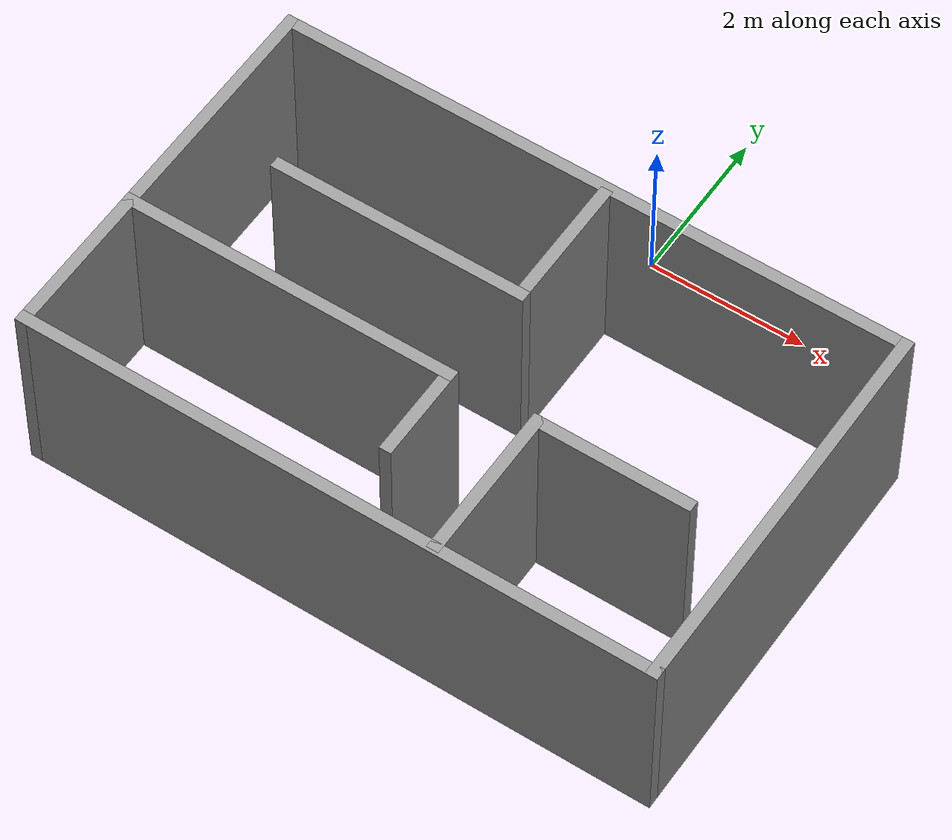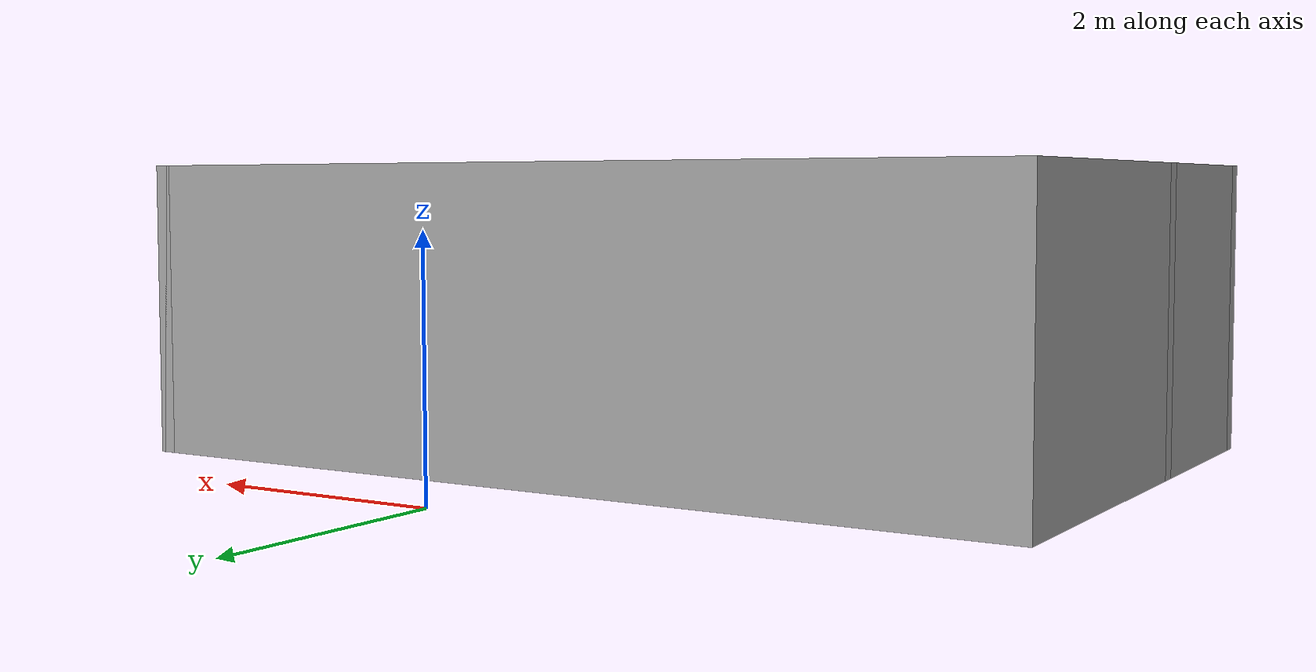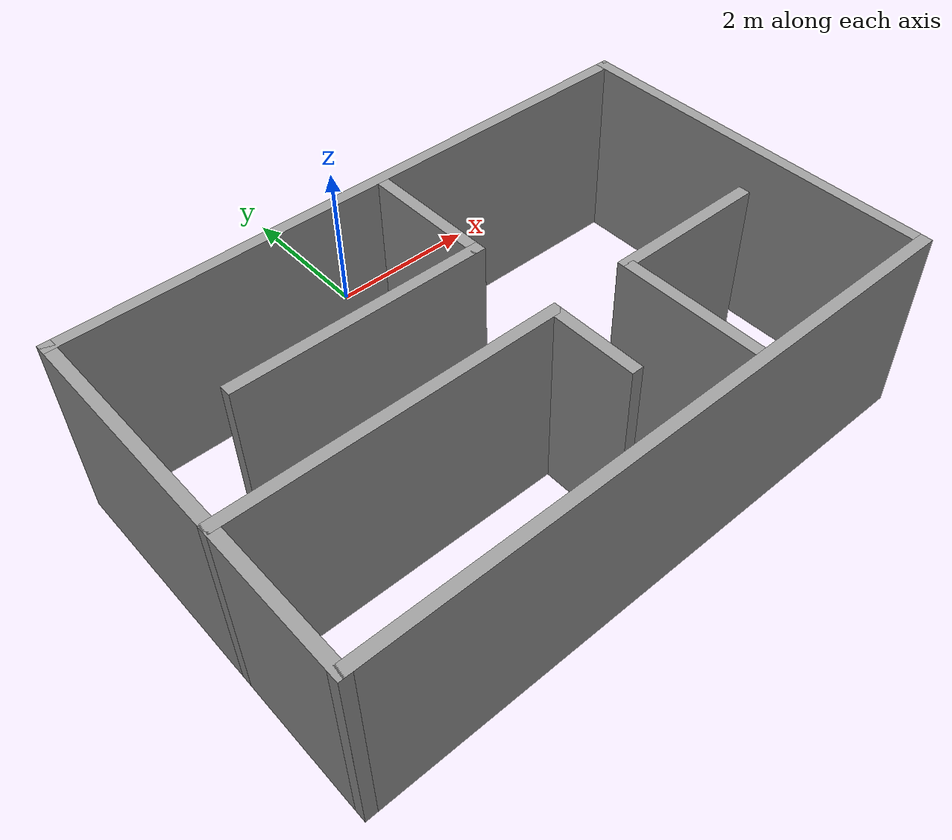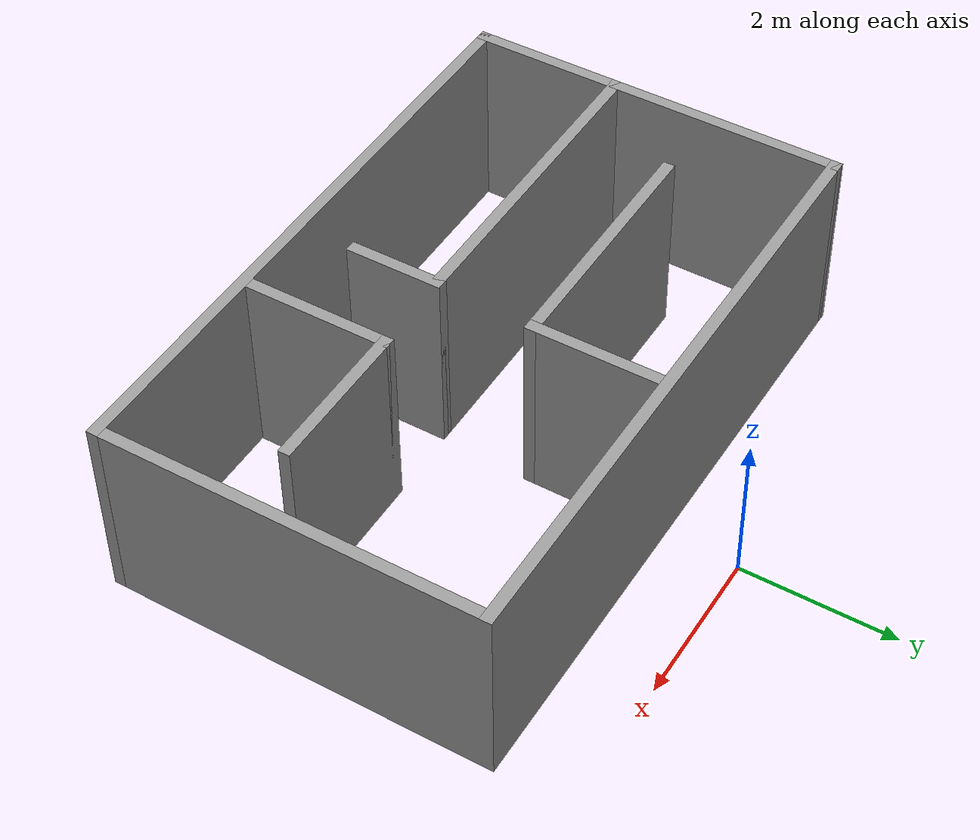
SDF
<?xml version='1.0'?>
<sdf version='1.7'>
  <model name='room人'>
    <pose>-0.215 -2.9725 0 0 -0 0</pose>
    <link name='Wall_0'>
      <collision name='Wall_0_Collision'>
        <geometry>
          <box>
            <size>8 0.15 2.5</size>
          </box>
        </geometry>
        <pose>0 0 1.25 0 -0 0</pose>
      </collision>
      <visual name='Wall_0_Visual'>
        <pose>0 0 1.25 0 -0 0</pose>
        <geometry>
          <box>
            <size>8 0.15 2.5</size>
          </box>
        </geometry>
        <material>
          <script>
            <uri>file://media/materials/scripts/gazebo.material</uri>
            <name>Gazebo/Grey</name>
          </script>
          <ambient>1 1 1 1</ambient>
        </material>
        <meta>
          <layer>0</layer>
        </meta>
      </visual>
      <pose>-0 1.9525 0 0 -0 0</pose>
    </link>
    <link name='Wall_1'>
      <collision name='Wall_1_Collision'>
        <geometry>
          <box>
            <size>5 0.15 2.5</size>
          </box>
        </geometry>
        <pose>0 0 1.25 0 -0 0</pose>
      </collision>
      <visual name='Wall_1_Visual'>
        <pose>0 0 1.25 0 -0 0</pose>
        <geometry>
          <box>
            <size>5 0.15 2.5</size>
          </box>
        </geometry>
        <material>
          <script>
            <uri>file://media/materials/scripts/gazebo.material</uri>
            <name>Gazebo/Grey</name>
          </script>
          <ambient>1 1 1 1</ambient>
        </material>
        <meta>
          <layer>0</layer>
        </meta>
      </visual>
      <pose>3.925 -0.4725 0 0 -0 -1.5708</pose>
    </link>
    <link name='Wall_11'>
      <collision name='Wall_11_Collision'>
        <geometry>
          <box>
            <size>2 0.15 2.5</size>
          </box>
        </geometry>
        <pose>0 0 1.25 0 -0 0</pose>
      </collision>
      <visual name='Wall_11_Visual'>
        <pose>0 0 1.25 0 -0 0</pose>
        <geometry>
          <box>
            <size>2 0.15 2.5</size>
          </box>
        </geometry>
        <material>
          <script>
            <uri>file://media/materials/scripts/gazebo.material</uri>
            <name>Gazebo/Grey</name>
          </script>
          <ambient>1 1 1 1</ambient>
        </material>
        <meta>
          <layer>0</layer>
        </meta>
      </visual>
      <pose>1.265 -1.9325 0 0 -0 1.5708</pose>
    </link>
    <link name='Wall_12'>
      <collision name='Wall_12_Collision'>
        <geometry>
          <box>
            <size>2 0.15 2.5</size>
          </box>
        </geometry>
        <pose>0 0 1.25 0 -0 0</pose>
      </collision>
      <visual name='Wall_12_Visual'>
        <pose>0 0 1.25 0 -0 0</pose>
        <geometry>
          <box>
            <size>2 0.15 2.5</size>
          </box>
        </geometry>
        <material>
          <script>
            <uri>file://media/materials/scripts/gazebo.material</uri>
            <name>Gazebo/Grey</name>
          </script>
          <ambient>1 1 1 1</ambient>
        </material>
        <meta>
          <layer>0</layer>
        </meta>
      </visual>
      <pose>2.19 -1.0075 0 0 -0 0</pose>
    </link>
    <link name='Wall_2'>
      <collision name='Wall_2_Collision'>
        <geometry>
          <box>
            <size>8 0.15 2.5</size>
          </box>
        </geometry>
        <pose>0 0 1.25 0 -0 0</pose>
      </collision>
      <visual name='Wall_2_Visual'>
        <pose>0 0 1.25 0 -0 0</pose>
        <geometry>
          <box>
            <size>8 0.15 2.5</size>
          </box>
        </geometry>
        <material>
          <script>
            <uri>file://media/materials/scripts/gazebo.material</uri>
            <name>Gazebo/Grey</name>
          </script>
          <ambient>1 1 1 1</ambient>
        </material>
        <meta>
          <layer>0</layer>
        </meta>
      </visual>
      <pose>-0 -2.8975 0 0 -0 3.14159</pose>
    </link>
    <link name='Wall_3'>
      <collision name='Wall_3_Collision'>
        <geometry>
          <box>
            <size>5 0.15 2.5</size>
          </box>
        </geometry>
        <pose>0 0 1.25 0 -0 0</pose>
      </collision>
      <visual name='Wall_3_Visual'>
        <pose>0 0 1.25 0 -0 0</pose>
        <geometry>
          <box>
            <size>5 0.15 2.5</size>
          </box>
        </geometry>
        <material>
          <script>
            <uri>file://media/materials/scripts/gazebo.material</uri>
            <name>Gazebo/Grey</name>
          </script>
          <ambient>1 1 1 1</ambient>
        </material>
        <meta>
          <layer>0</layer>
        </meta>
      </visual>
      <pose>-3.925 -0.4725 0 0 -0 1.5708</pose>
    </link>
    <link name='Wall_5'>
      <collision name='Wall_5_Collision'>
        <geometry>
          <box>
            <size>1.75 0.15 2.5</size>
          </box>
        </geometry>
        <pose>0 0 1.25 0 -0 0</pose>
      </collision>
      <visual name='Wall_5_Visual'>
        <pose>0 0 1.25 0 -0 0</pose>
        <geometry>
          <box>
            <size>1.75 0.15 2.5</size>
          </box>
        </geometry>
        <material>
          <script>
            <uri>file://media/materials/scripts/gazebo.material</uri>
            <name>Gazebo/Grey</name>
          </script>
          <ambient>1 1 1 1</ambient>
        </material>
        <meta>
          <layer>0</layer>
        </meta>
      </visual>
      <pose>0.225 1.0625 0 0 -0 -1.5708</pose>
    </link>
    <link name='Wall_6'>
      <collision name='Wall_6_Collision'>
        <geometry>
          <box>
            <size>3.25 0.15 2.5</size>
          </box>
        </geometry>
        <pose>0 0 1.25 0 -0 0</pose>
      </collision>
      <visual name='Wall_6_Visual'>
        <pose>0 0 1.25 0 -0 0</pose>
        <geometry>
          <box>
            <size>3.25 0.15 2.5</size>
          </box>
        </geometry>
        <material>
          <script>
            <uri>file://media/materials/scripts/gazebo.material</uri>
            <name>Gazebo/Grey</name>
          </script>
          <ambient>1 1 1 1</ambient>
        </material>
        <meta>
          <layer>0</layer>
        </meta>
      </visual>
      <pose>-1.325 0.2625 0 0 -0 3.14159</pose>
    </link>
    <link name='Wall_8'>
      <collision name='Wall_8_Collision'>
        <geometry>
          <box>
            <size>4.25 0.15 2.5</size>
          </box>
        </geometry>
        <pose>0 0 1.25 0 -0 0</pose>
      </collision>
      <visual name='Wall_8_Visual'>
        <pose>0 0 1.25 0 -0 0</pose>
        <geometry>
          <box>
            <size>4.25 0.15 2.5</size>
          </box>
        </geometry>
        <material>
          <script>
            <uri>file://media/materials/scripts/gazebo.material</uri>
            <name>Gazebo/Grey</name>
          </script>
          <ambient>1 1 1 1</ambient>
        </material>
        <meta>
          <layer>0</layer>
        </meta>
      </visual>
      <pose>-1.875 -1.0175 0 0 -0 0</pose>
    </link>
    <link name='Wall_9'>
      <collision name='Wall_9_Collision'>
        <geometry>
          <box>
            <size>1.25 0.15 2.5</size>
          </box>
        </geometry>
        <pose>0 0 1.25 0 -0 0</pose>
      </collision>
      <visual name='Wall_9_Visual'>
        <pose>0 0 1.25 0 -0 0</pose>
        <geometry>
          <box>
            <size>1.25 0.15 2.5</size>
          </box>
        </geometry>
        <material>
          <script>
            <uri>file://media/materials/scripts/gazebo.material</uri>
            <name>Gazebo/Grey</name>
          </script>
          <ambient>1 1 1 1</ambient>
        </material>
        <meta>
          <layer>0</layer>
        </meta>
      </visual>
      <pose>0.175 -1.5675 0 0 -0 -1.5708</pose>
    </link>
    <static>1</static>
  </model>
</sdf>
